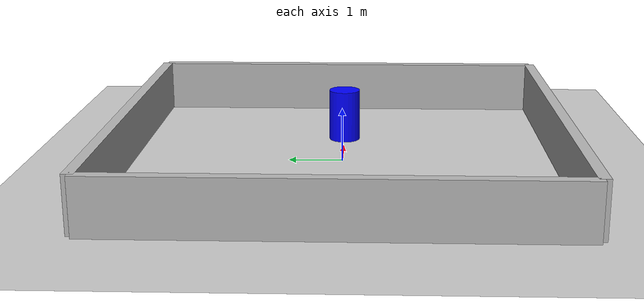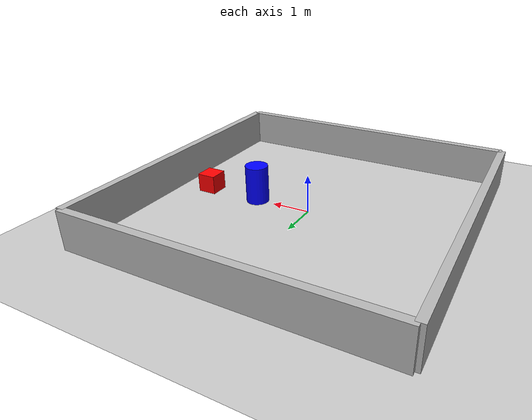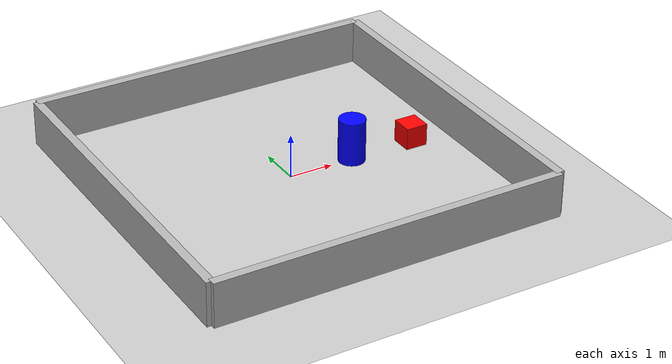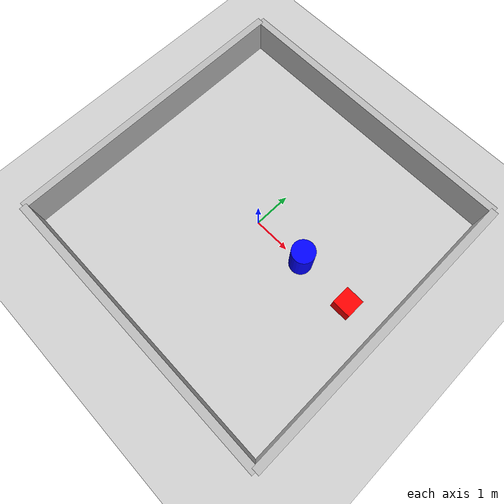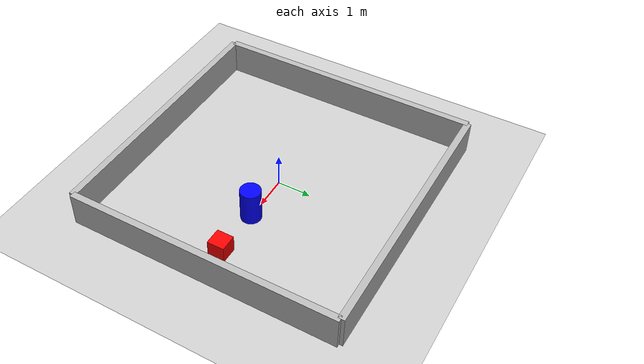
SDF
<?xml version="1.0" ?>
<sdf version="1.6">
  <world name="armazem_com_obstaculo">
    <!-- Luz e chão iguais -->
    <include>
      <uri>model://sun</uri>
    </include>
    <include>
      <uri>model://ground_plane</uri>
    </include>

    <!-- Paredes -->
    <model name='walls_armazem'>
      <static>true</static>
      <pose>0 0 0 0 0 0</pose>
      <link name='Wall_Norte'> <pose>0 4.0 0.5 0 0 0</pose> <visual name='visual'> <geometry> <box> <size>8 0.2 1</size> </box> </geometry> </visual> <collision name='collision'> <geometry> <box> <size>8 0.2 1</size> </box> </geometry> </collision> </link>
      <link name='Wall_Sul'> <pose>0 -4.0 0.5 0 0 0</pose> <visual name='visual'> <geometry> <box> <size>8 0.2 1</size> </box> </geometry> </visual> <collision name='collision'> <geometry> <box> <size>8 0.2 1</size> </box> </geometry> </collision> </link>
      <link name='Wall_Leste'> <pose>4.0 0 0.5 0 0 1.57</pose> <visual name='visual'> <geometry> <box> <size>8 0.2 1</size> </box> </geometry> </visual> <collision name='collision'> <geometry> <box> <size>8 0.2 1</size> </box> </geometry> </collision> </link>
      <link name='Wall_Oeste'> <pose>-4.0 0 0.5 0 0 1.57</pose> <visual name='visual'> <geometry> <box> <size>8 0.2 1</size> </box> </geometry> </visual> <collision name='collision'> <geometry> <box> <size>8 0.2 1</size> </box> </geometry> </collision> </link>
    </model>

    <!-- Encomenda -->
    <model name="encomenda">
      <static>true</static>
      <pose>3.0 0 0.25 0 0 0</pose>
      <link name="link">
        <visual name="visual">
          <geometry><box><size>0.5 0.5 0.5</size></box></geometry>
          <material><ambient>1 0 0 1</ambient><diffuse>1 0 0 1</diffuse></material>
        </visual>
        <collision name="collision"> <geometry><box><size>0.5 0.5 0.5</size></box></geometry> </collision>
      </link>
    </model>

    <!-- Obstáculo azul no caminho -->
    <model name="obstaculo_azul">
      <static>true</static>
      <pose>1.5 0 0.5 0 0 0</pose>
      <link name="link">
        <visual name="visual">
          <geometry><cylinder><radius>0.3</radius><length>1.0</length></cylinder></geometry>
          <material><ambient>0 0 1 1</ambient><diffuse>0 0 1 1</diffuse></material>
        </visual>
        <collision name="collision"> <geometry><cylinder><radius>0.3</radius><length>1.0</length></cylinder></geometry> </collision>
      </link>
    </model>
  </world>
</sdf>
